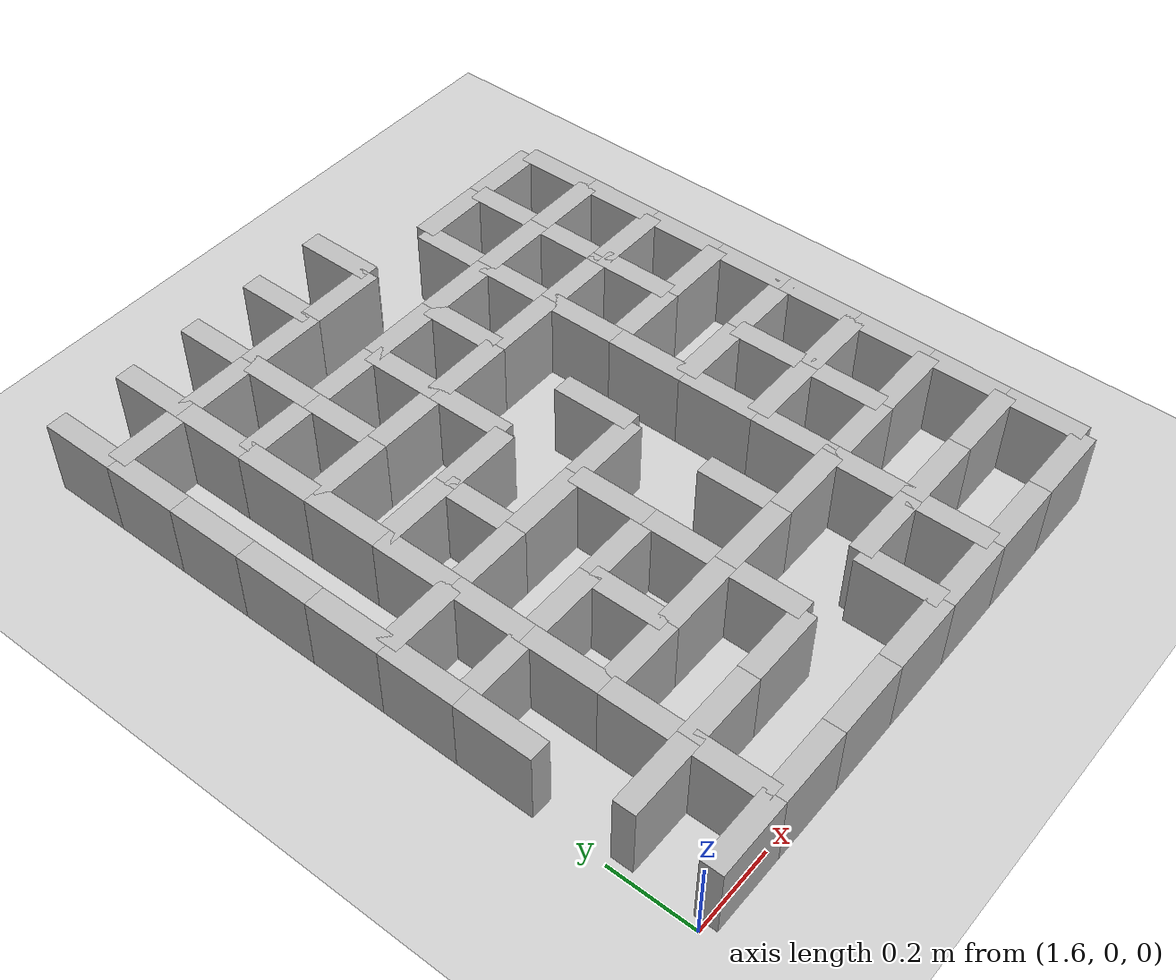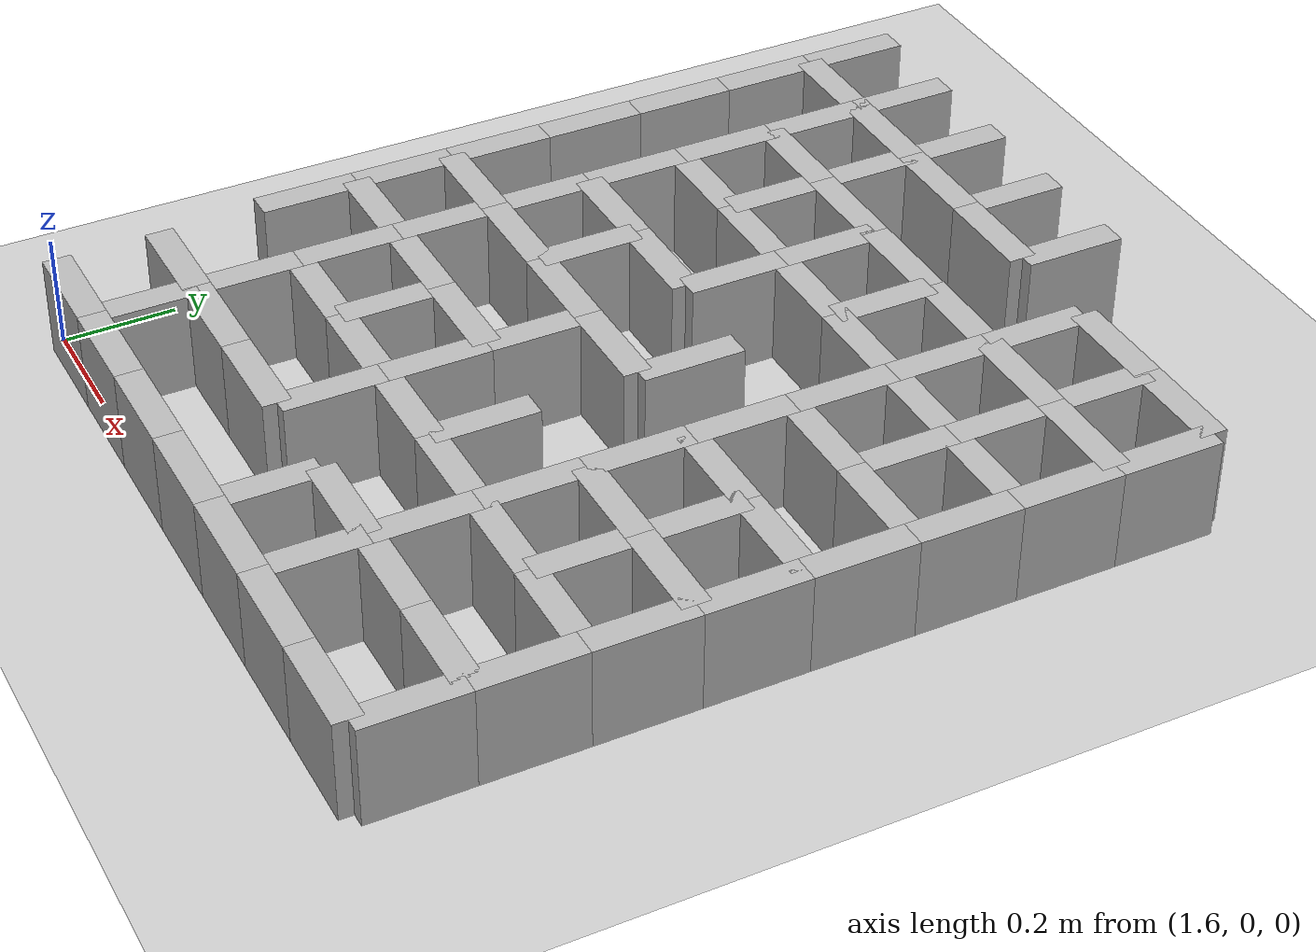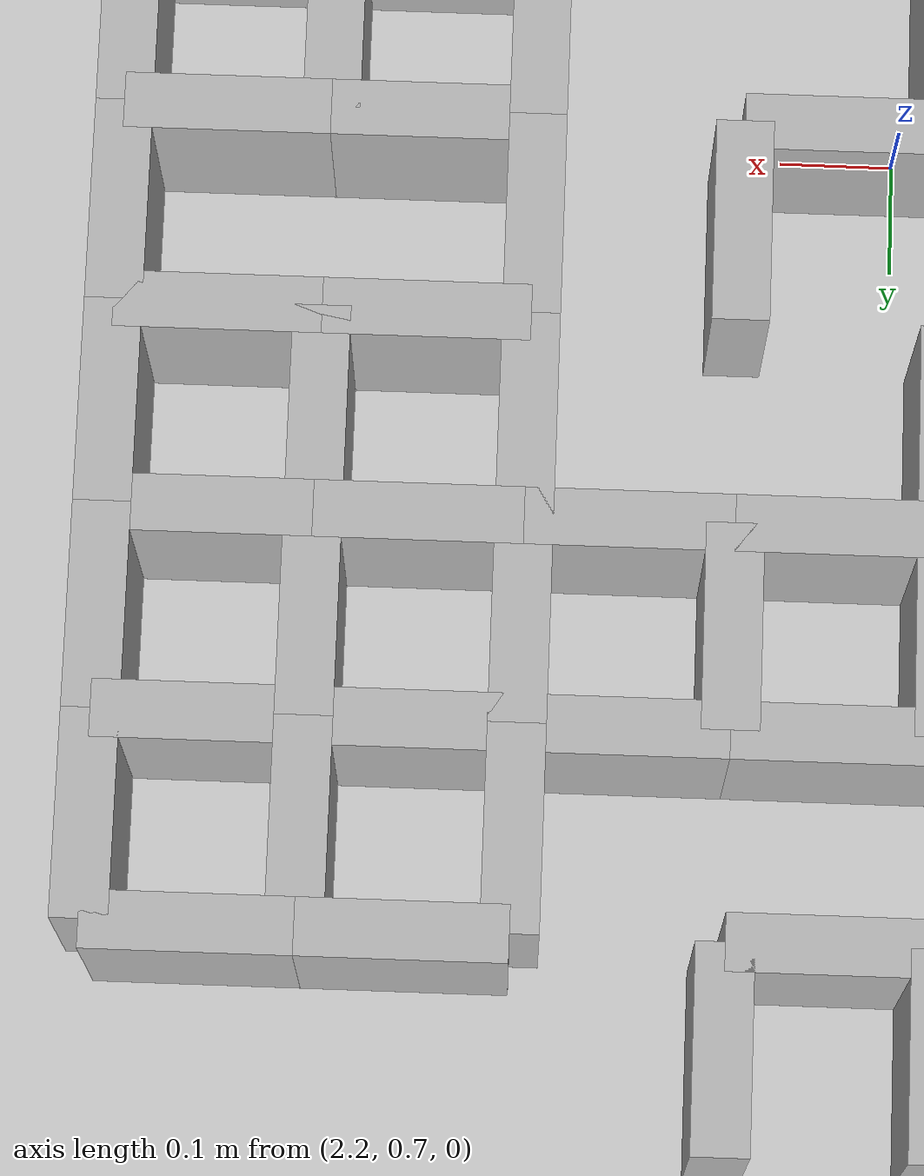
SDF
<sdf version="1.6">
 <world name="default">
  <model name="ground_plane">
   <static>1</static>
   <link name="link">
    <collision name="collision">
     <geometry><plane><normal>0 0 1</normal><size>100 100</size></plane></geometry>
     <surface><friction><ode><mu>100</mu><mu2>50</mu2></ode></friction></surface>
    </collision>
    <visual name="visual">
     <cast_shadows>0</cast_shadows>
     <geometry><plane><normal>0 0 1</normal><size>100 100</size></plane></geometry>
     <material>
      <script><uri>file://media/materials/scripts/gazebo.material</uri><name>Gazebo/Grey</name></script>
     </material>
    </visual>
   </link>
  </model>
  <model name="labyrinth_wall19">
   <pose>1.710000 0.000000 0.09 0 0 0.000000</pose>
   <link name="link">
    <inertial><mass>3.0</mass></inertial>
    <collision name="collision"><geometry><box><size>0.180 0.050 0.180</size></box></geometry></collision>
    <visual name="visual"><geometry><box><size>0.180 0.050 0.180</size></box></geometry></visual>
   </link>
   <static>true</static>
  </model>
  <model name="labyrinth_wall20">
   <pose>1.800000 0.090000 0.09 0 0 1.570796</pose>
   <link name="link">
    <inertial><mass>3.0</mass></inertial>
    <collision name="collision"><geometry><box><size>0.180 0.050 0.180</size></box></geometry></collision>
    <visual name="visual"><geometry><box><size>0.180 0.050 0.180</size></box></geometry></visual>
   </link>
   <static>true</static>
  </model>
  <model name="labyrinth_wall21">
   <pose>1.890000 0.000000 0.09 0 0 0.000000</pose>
   <link name="link">
    <inertial><mass>3.0</mass></inertial>
    <collision name="collision"><geometry><box><size>0.180 0.050 0.180</size></box></geometry></collision>
    <visual name="visual"><geometry><box><size>0.180 0.050 0.180</size></box></geometry></visual>
   </link>
   <static>true</static>
  </model>
  <model name="labyrinth_wall23">
   <pose>2.070000 0.000000 0.09 0 0 0.000000</pose>
   <link name="link">
    <inertial><mass>3.0</mass></inertial>
    <collision name="collision"><geometry><box><size>0.180 0.050 0.180</size></box></geometry></collision>
    <visual name="visual"><geometry><box><size>0.180 0.050 0.180</size></box></geometry></visual>
   </link>
   <static>true</static>
  </model>
  <model name="labyrinth_wall25">
   <pose>2.250000 0.000000 0.09 0 0 0.000000</pose>
   <link name="link">
    <inertial><mass>3.0</mass></inertial>
    <collision name="collision"><geometry><box><size>0.180 0.050 0.180</size></box></geometry></collision>
    <visual name="visual"><geometry><box><size>0.180 0.050 0.180</size></box></geometry></visual>
   </link>
   <static>true</static>
  </model>
  <model name="labyrinth_wall26">
   <pose>2.340000 0.090000 0.09 0 0 1.570796</pose>
   <link name="link">
    <inertial><mass>3.0</mass></inertial>
    <collision name="collision"><geometry><box><size>0.180 0.050 0.180</size></box></geometry></collision>
    <visual name="visual"><geometry><box><size>0.180 0.050 0.180</size></box></geometry></visual>
   </link>
   <static>true</static>
  </model>
  <model name="labyrinth_wall27">
   <pose>2.430000 0.000000 0.09 0 0 0.000000</pose>
   <link name="link">
    <inertial><mass>3.0</mass></inertial>
    <collision name="collision"><geometry><box><size>0.180 0.050 0.180</size></box></geometry></collision>
    <visual name="visual"><geometry><box><size>0.180 0.050 0.180</size></box></geometry></visual>
   </link>
   <static>true</static>
  </model>
  <model name="labyrinth_wall28">
   <pose>2.520000 0.090000 0.09 0 0 1.570796</pose>
   <link name="link">
    <inertial><mass>3.0</mass></inertial>
    <collision name="collision"><geometry><box><size>0.180 0.050 0.180</size></box></geometry></collision>
    <visual name="visual"><geometry><box><size>0.180 0.050 0.180</size></box></geometry></visual>
   </link>
   <static>true</static>
  </model>
  <model name="labyrinth_wall29">
   <pose>2.610000 0.000000 0.09 0 0 0.000000</pose>
   <link name="link">
    <inertial><mass>3.0</mass></inertial>
    <collision name="collision"><geometry><box><size>0.180 0.050 0.180</size></box></geometry></collision>
    <visual name="visual"><geometry><box><size>0.180 0.050 0.180</size></box></geometry></visual>
   </link>
   <static>true</static>
  </model>
  <model name="labyrinth_wall31">
   <pose>2.790000 0.000000 0.09 0 0 0.000000</pose>
   <link name="link">
    <inertial><mass>3.0</mass></inertial>
    <collision name="collision"><geometry><box><size>0.180 0.050 0.180</size></box></geometry></collision>
    <visual name="visual"><geometry><box><size>0.180 0.050 0.180</size></box></geometry></visual>
   </link>
   <static>true</static>
  </model>
  <model name="labyrinth_wall32">
   <pose>2.880000 0.090000 0.09 0 0 1.570796</pose>
   <link name="link">
    <inertial><mass>3.0</mass></inertial>
    <collision name="collision"><geometry><box><size>0.180 0.050 0.180</size></box></geometry></collision>
    <visual name="visual"><geometry><box><size>0.180 0.050 0.180</size></box></geometry></visual>
   </link>
   <static>true</static>
  </model>
  <model name="labyrinth_wall52">
   <pose>1.710000 0.180000 0.09 0 0 0.000000</pose>
   <link name="link">
    <inertial><mass>3.0</mass></inertial>
    <collision name="collision"><geometry><box><size>0.180 0.050 0.180</size></box></geometry></collision>
    <visual name="visual"><geometry><box><size>0.180 0.050 0.180</size></box></geometry></visual>
   </link>
   <static>true</static>
  </model>
  <model name="labyrinth_wall53">
   <pose>1.800000 0.270000 0.09 0 0 1.570796</pose>
   <link name="link">
    <inertial><mass>3.0</mass></inertial>
    <collision name="collision"><geometry><box><size>0.180 0.050 0.180</size></box></geometry></collision>
    <visual name="visual"><geometry><box><size>0.180 0.050 0.180</size></box></geometry></visual>
   </link>
   <static>true</static>
  </model>
  <model name="labyrinth_wall54">
   <pose>1.890000 0.180000 0.09 0 0 0.000000</pose>
   <link name="link">
    <inertial><mass>3.0</mass></inertial>
    <collision name="collision"><geometry><box><size>0.180 0.050 0.180</size></box></geometry></collision>
    <visual name="visual"><geometry><box><size>0.180 0.050 0.180</size></box></geometry></visual>
   </link>
   <static>true</static>
  </model>
  <model name="labyrinth_wall56">
   <pose>2.070000 0.180000 0.09 0 0 0.000000</pose>
   <link name="link">
    <inertial><mass>3.0</mass></inertial>
    <collision name="collision"><geometry><box><size>0.180 0.050 0.180</size></box></geometry></collision>
    <visual name="visual"><geometry><box><size>0.180 0.050 0.180</size></box></geometry></visual>
   </link>
   <static>true</static>
  </model>
  <model name="labyrinth_wall57">
   <pose>2.160000 0.270000 0.09 0 0 1.570796</pose>
   <link name="link">
    <inertial><mass>3.0</mass></inertial>
    <collision name="collision"><geometry><box><size>0.180 0.050 0.180</size></box></geometry></collision>
    <visual name="visual"><geometry><box><size>0.180 0.050 0.180</size></box></geometry></visual>
   </link>
   <static>true</static>
  </model>
  <model name="labyrinth_wall60">
   <pose>2.430000 0.180000 0.09 0 0 0.000000</pose>
   <link name="link">
    <inertial><mass>3.0</mass></inertial>
    <collision name="collision"><geometry><box><size>0.180 0.050 0.180</size></box></geometry></collision>
    <visual name="visual"><geometry><box><size>0.180 0.050 0.180</size></box></geometry></visual>
   </link>
   <static>true</static>
  </model>
  <model name="labyrinth_wall61">
   <pose>2.520000 0.270000 0.09 0 0 1.570796</pose>
   <link name="link">
    <inertial><mass>3.0</mass></inertial>
    <collision name="collision"><geometry><box><size>0.180 0.050 0.180</size></box></geometry></collision>
    <visual name="visual"><geometry><box><size>0.180 0.050 0.180</size></box></geometry></visual>
   </link>
   <static>true</static>
  </model>
  <model name="labyrinth_wall62">
   <pose>2.610000 0.180000 0.09 0 0 0.000000</pose>
   <link name="link">
    <inertial><mass>3.0</mass></inertial>
    <collision name="collision"><geometry><box><size>0.180 0.050 0.180</size></box></geometry></collision>
    <visual name="visual"><geometry><box><size>0.180 0.050 0.180</size></box></geometry></visual>
   </link>
   <static>true</static>
  </model>
  <model name="labyrinth_wall64">
   <pose>2.790000 0.180000 0.09 0 0 0.000000</pose>
   <link name="link">
    <inertial><mass>3.0</mass></inertial>
    <collision name="collision"><geometry><box><size>0.180 0.050 0.180</size></box></geometry></collision>
    <visual name="visual"><geometry><box><size>0.180 0.050 0.180</size></box></geometry></visual>
   </link>
   <static>true</static>
  </model>
  <model name="labyrinth_wall65">
   <pose>2.880000 0.270000 0.09 0 0 1.570796</pose>
   <link name="link">
    <inertial><mass>3.0</mass></inertial>
    <collision name="collision"><geometry><box><size>0.180 0.050 0.180</size></box></geometry></collision>
    <visual name="visual"><geometry><box><size>0.180 0.050 0.180</size></box></geometry></visual>
   </link>
   <static>true</static>
  </model>
  <model name="labyrinth_wall84">
   <pose>1.620000 0.450000 0.09 0 0 1.570796</pose>
   <link name="link">
    <inertial><mass>3.0</mass></inertial>
    <collision name="collision"><geometry><box><size>0.180 0.050 0.180</size></box></geometry></collision>
    <visual name="visual"><geometry><box><size>0.180 0.050 0.180</size></box></geometry></visual>
   </link>
   <static>true</static>
  </model>
  <model name="labyrinth_wall86">
   <pose>1.800000 0.450000 0.09 0 0 1.570796</pose>
   <link name="link">
    <inertial><mass>3.0</mass></inertial>
    <collision name="collision"><geometry><box><size>0.180 0.050 0.180</size></box></geometry></collision>
    <visual name="visual"><geometry><box><size>0.180 0.050 0.180</size></box></geometry></visual>
   </link>
   <static>true</static>
  </model>
  <model name="labyrinth_wall87">
   <pose>1.890000 0.360000 0.09 0 0 0.000000</pose>
   <link name="link">
    <inertial><mass>3.0</mass></inertial>
    <collision name="collision"><geometry><box><size>0.180 0.050 0.180</size></box></geometry></collision>
    <visual name="visual"><geometry><box><size>0.180 0.050 0.180</size></box></geometry></visual>
   </link>
   <static>true</static>
  </model>
  <model name="labyrinth_wall88">
   <pose>1.980000 0.450000 0.09 0 0 1.570796</pose>
   <link name="link">
    <inertial><mass>3.0</mass></inertial>
    <collision name="collision"><geometry><box><size>0.180 0.050 0.180</size></box></geometry></collision>
    <visual name="visual"><geometry><box><size>0.180 0.050 0.180</size></box></geometry></visual>
   </link>
   <static>true</static>
  </model>
  <model name="labyrinth_wall89">
   <pose>2.070000 0.360000 0.09 0 0 0.000000</pose>
   <link name="link">
    <inertial><mass>3.0</mass></inertial>
    <collision name="collision"><geometry><box><size>0.180 0.050 0.180</size></box></geometry></collision>
    <visual name="visual"><geometry><box><size>0.180 0.050 0.180</size></box></geometry></visual>
   </link>
   <static>true</static>
  </model>
  <model name="labyrinth_wall90">
   <pose>2.160000 0.450000 0.09 0 0 1.570796</pose>
   <link name="link">
    <inertial><mass>3.0</mass></inertial>
    <collision name="collision"><geometry><box><size>0.180 0.050 0.180</size></box></geometry></collision>
    <visual name="visual"><geometry><box><size>0.180 0.050 0.180</size></box></geometry></visual>
   </link>
   <static>true</static>
  </model>
  <model name="labyrinth_wall91">
   <pose>2.250000 0.360000 0.09 0 0 0.000000</pose>
   <link name="link">
    <inertial><mass>3.0</mass></inertial>
    <collision name="collision"><geometry><box><size>0.180 0.050 0.180</size></box></geometry></collision>
    <visual name="visual"><geometry><box><size>0.180 0.050 0.180</size></box></geometry></visual>
   </link>
   <static>true</static>
  </model>
  <model name="labyrinth_wall92">
   <pose>2.340000 0.450000 0.09 0 0 1.570796</pose>
   <link name="link">
    <inertial><mass>3.0</mass></inertial>
    <collision name="collision"><geometry><box><size>0.180 0.050 0.180</size></box></geometry></collision>
    <visual name="visual"><geometry><box><size>0.180 0.050 0.180</size></box></geometry></visual>
   </link>
   <static>true</static>
  </model>
  <model name="labyrinth_wall93">
   <pose>2.430000 0.360000 0.09 0 0 0.000000</pose>
   <link name="link">
    <inertial><mass>3.0</mass></inertial>
    <collision name="collision"><geometry><box><size>0.180 0.050 0.180</size></box></geometry></collision>
    <visual name="visual"><geometry><box><size>0.180 0.050 0.180</size></box></geometry></visual>
   </link>
   <static>true</static>
  </model>
  <model name="labyrinth_wall94">
   <pose>2.520000 0.450000 0.09 0 0 1.570796</pose>
   <link name="link">
    <inertial><mass>3.0</mass></inertial>
    <collision name="collision"><geometry><box><size>0.180 0.050 0.180</size></box></geometry></collision>
    <visual name="visual"><geometry><box><size>0.180 0.050 0.180</size></box></geometry></visual>
   </link>
   <static>true</static>
  </model>
  <model name="labyrinth_wall95">
   <pose>2.610000 0.360000 0.09 0 0 0.000000</pose>
   <link name="link">
    <inertial><mass>3.0</mass></inertial>
    <collision name="collision"><geometry><box><size>0.180 0.050 0.180</size></box></geometry></collision>
    <visual name="visual"><geometry><box><size>0.180 0.050 0.180</size></box></geometry></visual>
   </link>
   <static>true</static>
  </model>
  <model name="labyrinth_wall96">
   <pose>2.700000 0.450000 0.09 0 0 1.570796</pose>
   <link name="link">
    <inertial><mass>3.0</mass></inertial>
    <collision name="collision"><geometry><box><size>0.180 0.050 0.180</size></box></geometry></collision>
    <visual name="visual"><geometry><box><size>0.180 0.050 0.180</size></box></geometry></visual>
   </link>
   <static>true</static>
  </model>
  <model name="labyrinth_wall97">
   <pose>2.790000 0.360000 0.09 0 0 0.000000</pose>
   <link name="link">
    <inertial><mass>3.0</mass></inertial>
    <collision name="collision"><geometry><box><size>0.180 0.050 0.180</size></box></geometry></collision>
    <visual name="visual"><geometry><box><size>0.180 0.050 0.180</size></box></geometry></visual>
   </link>
   <static>true</static>
  </model>
  <model name="labyrinth_wall98">
   <pose>2.880000 0.450000 0.09 0 0 1.570796</pose>
   <link name="link">
    <inertial><mass>3.0</mass></inertial>
    <collision name="collision"><geometry><box><size>0.180 0.050 0.180</size></box></geometry></collision>
    <visual name="visual"><geometry><box><size>0.180 0.050 0.180</size></box></geometry></visual>
   </link>
   <static>true</static>
  </model>
  <model name="labyrinth_wall117">
   <pose>1.620000 0.630000 0.09 0 0 1.570796</pose>
   <link name="link">
    <inertial><mass>3.0</mass></inertial>
    <collision name="collision"><geometry><box><size>0.180 0.050 0.180</size></box></geometry></collision>
    <visual name="visual"><geometry><box><size>0.180 0.050 0.180</size></box></geometry></visual>
   </link>
   <static>true</static>
  </model>
  <model name="labyrinth_wall118">
   <pose>1.710000 0.540000 0.09 0 0 0.000000</pose>
   <link name="link">
    <inertial><mass>3.0</mass></inertial>
    <collision name="collision"><geometry><box><size>0.180 0.050 0.180</size></box></geometry></collision>
    <visual name="visual"><geometry><box><size>0.180 0.050 0.180</size></box></geometry></visual>
   </link>
   <static>true</static>
  </model>
  <model name="labyrinth_wall119">
   <pose>1.800000 0.630000 0.09 0 0 1.570796</pose>
   <link name="link">
    <inertial><mass>3.0</mass></inertial>
    <collision name="collision"><geometry><box><size>0.180 0.050 0.180</size></box></geometry></collision>
    <visual name="visual"><geometry><box><size>0.180 0.050 0.180</size></box></geometry></visual>
   </link>
   <static>true</static>
  </model>
  <model name="labyrinth_wall120">
   <pose>1.890000 0.540000 0.09 0 0 0.000000</pose>
   <link name="link">
    <inertial><mass>3.0</mass></inertial>
    <collision name="collision"><geometry><box><size>0.180 0.050 0.180</size></box></geometry></collision>
    <visual name="visual"><geometry><box><size>0.180 0.050 0.180</size></box></geometry></visual>
   </link>
   <static>true</static>
  </model>
  <model name="labyrinth_wall122">
   <pose>2.070000 0.540000 0.09 0 0 0.000000</pose>
   <link name="link">
    <inertial><mass>3.0</mass></inertial>
    <collision name="collision"><geometry><box><size>0.180 0.050 0.180</size></box></geometry></collision>
    <visual name="visual"><geometry><box><size>0.180 0.050 0.180</size></box></geometry></visual>
   </link>
   <static>true</static>
  </model>
  <model name="labyrinth_wall123">
   <pose>2.160000 0.630000 0.09 0 0 1.570796</pose>
   <link name="link">
    <inertial><mass>3.0</mass></inertial>
    <collision name="collision"><geometry><box><size>0.180 0.050 0.180</size></box></geometry></collision>
    <visual name="visual"><geometry><box><size>0.180 0.050 0.180</size></box></geometry></visual>
   </link>
   <static>true</static>
  </model>
  <model name="labyrinth_wall127">
   <pose>2.520000 0.630000 0.09 0 0 1.570796</pose>
   <link name="link">
    <inertial><mass>3.0</mass></inertial>
    <collision name="collision"><geometry><box><size>0.180 0.050 0.180</size></box></geometry></collision>
    <visual name="visual"><geometry><box><size>0.180 0.050 0.180</size></box></geometry></visual>
   </link>
   <static>true</static>
  </model>
  <model name="labyrinth_wall128">
   <pose>2.610000 0.540000 0.09 0 0 0.000000</pose>
   <link name="link">
    <inertial><mass>3.0</mass></inertial>
    <collision name="collision"><geometry><box><size>0.180 0.050 0.180</size></box></geometry></collision>
    <visual name="visual"><geometry><box><size>0.180 0.050 0.180</size></box></geometry></visual>
   </link>
   <static>true</static>
  </model>
  <model name="labyrinth_wall129">
   <pose>2.700000 0.630000 0.09 0 0 1.570796</pose>
   <link name="link">
    <inertial><mass>3.0</mass></inertial>
    <collision name="collision"><geometry><box><size>0.180 0.050 0.180</size></box></geometry></collision>
    <visual name="visual"><geometry><box><size>0.180 0.050 0.180</size></box></geometry></visual>
   </link>
   <static>true</static>
  </model>
  <model name="labyrinth_wall130">
   <pose>2.790000 0.540000 0.09 0 0 0.000000</pose>
   <link name="link">
    <inertial><mass>3.0</mass></inertial>
    <collision name="collision"><geometry><box><size>0.180 0.050 0.180</size></box></geometry></collision>
    <visual name="visual"><geometry><box><size>0.180 0.050 0.180</size></box></geometry></visual>
   </link>
   <static>true</static>
  </model>
  <model name="labyrinth_wall131">
   <pose>2.880000 0.630000 0.09 0 0 1.570796</pose>
   <link name="link">
    <inertial><mass>3.0</mass></inertial>
    <collision name="collision"><geometry><box><size>0.180 0.050 0.180</size></box></geometry></collision>
    <visual name="visual"><geometry><box><size>0.180 0.050 0.180</size></box></geometry></visual>
   </link>
   <static>true</static>
  </model>
  <model name="labyrinth_wall150">
   <pose>1.620000 0.810000 0.09 0 0 1.570796</pose>
   <link name="link">
    <inertial><mass>3.0</mass></inertial>
    <collision name="collision"><geometry><box><size>0.180 0.050 0.180</size></box></geometry></collision>
    <visual name="visual"><geometry><box><size>0.180 0.050 0.180</size></box></geometry></visual>
   </link>
   <static>true</static>
  </model>
  <model name="labyrinth_wall151">
   <pose>1.710000 0.720000 0.09 0 0 0.000000</pose>
   <link name="link">
    <inertial><mass>3.0</mass></inertial>
    <collision name="collision"><geometry><box><size>0.180 0.050 0.180</size></box></geometry></collision>
    <visual name="visual"><geometry><box><size>0.180 0.050 0.180</size></box></geometry></visual>
   </link>
   <static>true</static>
  </model>
  <model name="labyrinth_wall152">
   <pose>1.800000 0.810000 0.09 0 0 1.570796</pose>
   <link name="link">
    <inertial><mass>3.0</mass></inertial>
    <collision name="collision"><geometry><box><size>0.180 0.050 0.180</size></box></geometry></collision>
    <visual name="visual"><geometry><box><size>0.180 0.050 0.180</size></box></geometry></visual>
   </link>
   <static>true</static>
  </model>
  <model name="labyrinth_wall153">
   <pose>1.890000 0.720000 0.09 0 0 0.000000</pose>
   <link name="link">
    <inertial><mass>3.0</mass></inertial>
    <collision name="collision"><geometry><box><size>0.180 0.050 0.180</size></box></geometry></collision>
    <visual name="visual"><geometry><box><size>0.180 0.050 0.180</size></box></geometry></visual>
   </link>
   <static>true</static>
  </model>
  <model name="labyrinth_wall154">
   <pose>1.980000 0.810000 0.09 0 0 1.570796</pose>
   <link name="link">
    <inertial><mass>3.0</mass></inertial>
    <collision name="collision"><geometry><box><size>0.180 0.050 0.180</size></box></geometry></collision>
    <visual name="visual"><geometry><box><size>0.180 0.050 0.180</size></box></geometry></visual>
   </link>
   <static>true</static>
  </model>
  <model name="labyrinth_wall155">
   <pose>2.070000 0.720000 0.09 0 0 0.000000</pose>
   <link name="link">
    <inertial><mass>3.0</mass></inertial>
    <collision name="collision"><geometry><box><size>0.180 0.050 0.180</size></box></geometry></collision>
    <visual name="visual"><geometry><box><size>0.180 0.050 0.180</size></box></geometry></visual>
   </link>
   <static>true</static>
  </model>
  <model name="labyrinth_wall157">
   <pose>2.250000 0.720000 0.09 0 0 0.000000</pose>
   <link name="link">
    <inertial><mass>3.0</mass></inertial>
    <collision name="collision"><geometry><box><size>0.180 0.050 0.180</size></box></geometry></collision>
    <visual name="visual"><geometry><box><size>0.180 0.050 0.180</size></box></geometry></visual>
   </link>
   <static>true</static>
  </model>
  <model name="labyrinth_wall158">
   <pose>2.340000 0.810000 0.09 0 0 1.570796</pose>
   <link name="link">
    <inertial><mass>3.0</mass></inertial>
    <collision name="collision"><geometry><box><size>0.180 0.050 0.180</size></box></geometry></collision>
    <visual name="visual"><geometry><box><size>0.180 0.050 0.180</size></box></geometry></visual>
   </link>
   <static>true</static>
  </model>
  <model name="labyrinth_wall160">
   <pose>2.520000 0.810000 0.09 0 0 1.570796</pose>
   <link name="link">
    <inertial><mass>3.0</mass></inertial>
    <collision name="collision"><geometry><box><size>0.180 0.050 0.180</size></box></geometry></collision>
    <visual name="visual"><geometry><box><size>0.180 0.050 0.180</size></box></geometry></visual>
   </link>
   <static>true</static>
  </model>
  <model name="labyrinth_wall161">
   <pose>2.610000 0.720000 0.09 0 0 0.000000</pose>
   <link name="link">
    <inertial><mass>3.0</mass></inertial>
    <collision name="collision"><geometry><box><size>0.180 0.050 0.180</size></box></geometry></collision>
    <visual name="visual"><geometry><box><size>0.180 0.050 0.180</size></box></geometry></visual>
   </link>
   <static>true</static>
  </model>
  <model name="labyrinth_wall163">
   <pose>2.790000 0.720000 0.09 0 0 0.000000</pose>
   <link name="link">
    <inertial><mass>3.0</mass></inertial>
    <collision name="collision"><geometry><box><size>0.180 0.050 0.180</size></box></geometry></collision>
    <visual name="visual"><geometry><box><size>0.180 0.050 0.180</size></box></geometry></visual>
   </link>
   <static>true</static>
  </model>
  <model name="labyrinth_wall164">
   <pose>2.880000 0.810000 0.09 0 0 1.570796</pose>
   <link name="link">
    <inertial><mass>3.0</mass></inertial>
    <collision name="collision"><geometry><box><size>0.180 0.050 0.180</size></box></geometry></collision>
    <visual name="visual"><geometry><box><size>0.180 0.050 0.180</size></box></geometry></visual>
   </link>
   <static>true</static>
  </model>
  <model name="labyrinth_wall183">
   <pose>1.620000 0.990000 0.09 0 0 1.570796</pose>
   <link name="link">
    <inertial><mass>3.0</mass></inertial>
    <collision name="collision"><geometry><box><size>0.180 0.050 0.180</size></box></geometry></collision>
    <visual name="visual"><geometry><box><size>0.180 0.050 0.180</size></box></geometry></visual>
   </link>
   <static>true</static>
  </model>
  <model name="labyrinth_wall185">
   <pose>1.800000 0.990000 0.09 0 0 1.570796</pose>
   <link name="link">
    <inertial><mass>3.0</mass></inertial>
    <collision name="collision"><geometry><box><size>0.180 0.050 0.180</size></box></geometry></collision>
    <visual name="visual"><geometry><box><size>0.180 0.050 0.180</size></box></geometry></visual>
   </link>
   <static>true</static>
  </model>
  <model name="labyrinth_wall186">
   <pose>1.890000 0.900000 0.09 0 0 0.000000</pose>
   <link name="link">
    <inertial><mass>3.0</mass></inertial>
    <collision name="collision"><geometry><box><size>0.180 0.050 0.180</size></box></geometry></collision>
    <visual name="visual"><geometry><box><size>0.180 0.050 0.180</size></box></geometry></visual>
   </link>
   <static>true</static>
  </model>
  <model name="labyrinth_wall188">
   <pose>2.070000 0.900000 0.09 0 0 0.000000</pose>
   <link name="link">
    <inertial><mass>3.0</mass></inertial>
    <collision name="collision"><geometry><box><size>0.180 0.050 0.180</size></box></geometry></collision>
    <visual name="visual"><geometry><box><size>0.180 0.050 0.180</size></box></geometry></visual>
   </link>
   <static>true</static>
  </model>
  <model name="labyrinth_wall189">
   <pose>2.160000 0.990000 0.09 0 0 1.570796</pose>
   <link name="link">
    <inertial><mass>3.0</mass></inertial>
    <collision name="collision"><geometry><box><size>0.180 0.050 0.180</size></box></geometry></collision>
    <visual name="visual"><geometry><box><size>0.180 0.050 0.180</size></box></geometry></visual>
   </link>
   <static>true</static>
  </model>
  <model name="labyrinth_wall193">
   <pose>2.520000 0.990000 0.09 0 0 1.570796</pose>
   <link name="link">
    <inertial><mass>3.0</mass></inertial>
    <collision name="collision"><geometry><box><size>0.180 0.050 0.180</size></box></geometry></collision>
    <visual name="visual"><geometry><box><size>0.180 0.050 0.180</size></box></geometry></visual>
   </link>
   <static>true</static>
  </model>
  <model name="labyrinth_wall194">
   <pose>2.610000 0.900000 0.09 0 0 0.000000</pose>
   <link name="link">
    <inertial><mass>3.0</mass></inertial>
    <collision name="collision"><geometry><box><size>0.180 0.050 0.180</size></box></geometry></collision>
    <visual name="visual"><geometry><box><size>0.180 0.050 0.180</size></box></geometry></visual>
   </link>
   <static>true</static>
  </model>
  <model name="labyrinth_wall195">
   <pose>2.700000 0.990000 0.09 0 0 1.570796</pose>
   <link name="link">
    <inertial><mass>3.0</mass></inertial>
    <collision name="collision"><geometry><box><size>0.180 0.050 0.180</size></box></geometry></collision>
    <visual name="visual"><geometry><box><size>0.180 0.050 0.180</size></box></geometry></visual>
   </link>
   <static>true</static>
  </model>
  <model name="labyrinth_wall196">
   <pose>2.790000 0.900000 0.09 0 0 0.000000</pose>
   <link name="link">
    <inertial><mass>3.0</mass></inertial>
    <collision name="collision"><geometry><box><size>0.180 0.050 0.180</size></box></geometry></collision>
    <visual name="visual"><geometry><box><size>0.180 0.050 0.180</size></box></geometry></visual>
   </link>
   <static>true</static>
  </model>
  <model name="labyrinth_wall197">
   <pose>2.880000 0.990000 0.09 0 0 1.570796</pose>
   <link name="link">
    <inertial><mass>3.0</mass></inertial>
    <collision name="collision"><geometry><box><size>0.180 0.050 0.180</size></box></geometry></collision>
    <visual name="visual"><geometry><box><size>0.180 0.050 0.180</size></box></geometry></visual>
   </link>
   <static>true</static>
  </model>
  <model name="labyrinth_wall216">
   <pose>1.620000 1.170000 0.09 0 0 1.570796</pose>
   <link name="link">
    <inertial><mass>3.0</mass></inertial>
    <collision name="collision"><geometry><box><size>0.180 0.050 0.180</size></box></geometry></collision>
    <visual name="visual"><geometry><box><size>0.180 0.050 0.180</size></box></geometry></visual>
   </link>
   <static>true</static>
  </model>
  <model name="labyrinth_wall218">
   <pose>1.800000 1.170000 0.09 0 0 1.570796</pose>
   <link name="link">
    <inertial><mass>3.0</mass></inertial>
    <collision name="collision"><geometry><box><size>0.180 0.050 0.180</size></box></geometry></collision>
    <visual name="visual"><geometry><box><size>0.180 0.050 0.180</size></box></geometry></visual>
   </link>
   <static>true</static>
  </model>
  <model name="labyrinth_wall219">
   <pose>1.890000 1.080000 0.09 0 0 0.000000</pose>
   <link name="link">
    <inertial><mass>3.0</mass></inertial>
    <collision name="collision"><geometry><box><size>0.180 0.050 0.180</size></box></geometry></collision>
    <visual name="visual"><geometry><box><size>0.180 0.050 0.180</size></box></geometry></visual>
   </link>
   <static>true</static>
  </model>
  <model name="labyrinth_wall220">
   <pose>1.980000 1.170000 0.09 0 0 1.570796</pose>
   <link name="link">
    <inertial><mass>3.0</mass></inertial>
    <collision name="collision"><geometry><box><size>0.180 0.050 0.180</size></box></geometry></collision>
    <visual name="visual"><geometry><box><size>0.180 0.050 0.180</size></box></geometry></visual>
   </link>
   <static>true</static>
  </model>
  <model name="labyrinth_wall221">
   <pose>2.070000 1.080000 0.09 0 0 0.000000</pose>
   <link name="link">
    <inertial><mass>3.0</mass></inertial>
    <collision name="collision"><geometry><box><size>0.180 0.050 0.180</size></box></geometry></collision>
    <visual name="visual"><geometry><box><size>0.180 0.050 0.180</size></box></geometry></visual>
   </link>
   <static>true</static>
  </model>
  <model name="labyrinth_wall222">
   <pose>2.160000 1.170000 0.09 0 0 1.570796</pose>
   <link name="link">
    <inertial><mass>3.0</mass></inertial>
    <collision name="collision"><geometry><box><size>0.180 0.050 0.180</size></box></geometry></collision>
    <visual name="visual"><geometry><box><size>0.180 0.050 0.180</size></box></geometry></visual>
   </link>
   <static>true</static>
  </model>
  <model name="labyrinth_wall223">
   <pose>2.250000 1.080000 0.09 0 0 0.000000</pose>
   <link name="link">
    <inertial><mass>3.0</mass></inertial>
    <collision name="collision"><geometry><box><size>0.180 0.050 0.180</size></box></geometry></collision>
    <visual name="visual"><geometry><box><size>0.180 0.050 0.180</size></box></geometry></visual>
   </link>
   <static>true</static>
  </model>
  <model name="labyrinth_wall224">
   <pose>2.340000 1.170000 0.09 0 0 1.570796</pose>
   <link name="link">
    <inertial><mass>3.0</mass></inertial>
    <collision name="collision"><geometry><box><size>0.180 0.050 0.180</size></box></geometry></collision>
    <visual name="visual"><geometry><box><size>0.180 0.050 0.180</size></box></geometry></visual>
   </link>
   <static>true</static>
  </model>
  <model name="labyrinth_wall225">
   <pose>2.430000 1.080000 0.09 0 0 0.000000</pose>
   <link name="link">
    <inertial><mass>3.0</mass></inertial>
    <collision name="collision"><geometry><box><size>0.180 0.050 0.180</size></box></geometry></collision>
    <visual name="visual"><geometry><box><size>0.180 0.050 0.180</size></box></geometry></visual>
   </link>
   <static>true</static>
  </model>
  <model name="labyrinth_wall226">
   <pose>2.520000 1.170000 0.09 0 0 1.570796</pose>
   <link name="link">
    <inertial><mass>3.0</mass></inertial>
    <collision name="collision"><geometry><box><size>0.180 0.050 0.180</size></box></geometry></collision>
    <visual name="visual"><geometry><box><size>0.180 0.050 0.180</size></box></geometry></visual>
   </link>
   <static>true</static>
  </model>
  <model name="labyrinth_wall227">
   <pose>2.610000 1.080000 0.09 0 0 0.000000</pose>
   <link name="link">
    <inertial><mass>3.0</mass></inertial>
    <collision name="collision"><geometry><box><size>0.180 0.050 0.180</size></box></geometry></collision>
    <visual name="visual"><geometry><box><size>0.180 0.050 0.180</size></box></geometry></visual>
   </link>
   <static>true</static>
  </model>
  <model name="labyrinth_wall228">
   <pose>2.700000 1.170000 0.09 0 0 1.570796</pose>
   <link name="link">
    <inertial><mass>3.0</mass></inertial>
    <collision name="collision"><geometry><box><size>0.180 0.050 0.180</size></box></geometry></collision>
    <visual name="visual"><geometry><box><size>0.180 0.050 0.180</size></box></geometry></visual>
   </link>
   <static>true</static>
  </model>
  <model name="labyrinth_wall229">
   <pose>2.790000 1.080000 0.09 0 0 0.000000</pose>
   <link name="link">
    <inertial><mass>3.0</mass></inertial>
    <collision name="collision"><geometry><box><size>0.180 0.050 0.180</size></box></geometry></collision>
    <visual name="visual"><geometry><box><size>0.180 0.050 0.180</size></box></geometry></visual>
   </link>
   <static>true</static>
  </model>
  <model name="labyrinth_wall230">
   <pose>2.880000 1.170000 0.09 0 0 1.570796</pose>
   <link name="link">
    <inertial><mass>3.0</mass></inertial>
    <collision name="collision"><geometry><box><size>0.180 0.050 0.180</size></box></geometry></collision>
    <visual name="visual"><geometry><box><size>0.180 0.050 0.180</size></box></geometry></visual>
   </link>
   <static>true</static>
  </model>
  <model name="labyrinth_wall249">
   <pose>1.620000 1.350000 0.09 0 0 1.570796</pose>
   <link name="link">
    <inertial><mass>3.0</mass></inertial>
    <collision name="collision"><geometry><box><size>0.180 0.050 0.180</size></box></geometry></collision>
    <visual name="visual"><geometry><box><size>0.180 0.050 0.180</size></box></geometry></visual>
   </link>
   <static>true</static>
  </model>
  <model name="labyrinth_wall251">
   <pose>1.800000 1.350000 0.09 0 0 1.570796</pose>
   <link name="link">
    <inertial><mass>3.0</mass></inertial>
    <collision name="collision"><geometry><box><size>0.180 0.050 0.180</size></box></geometry></collision>
    <visual name="visual"><geometry><box><size>0.180 0.050 0.180</size></box></geometry></visual>
   </link>
   <static>true</static>
  </model>
  <model name="labyrinth_wall252">
   <pose>1.890000 1.260000 0.09 0 0 0.000000</pose>
   <link name="link">
    <inertial><mass>3.0</mass></inertial>
    <collision name="collision"><geometry><box><size>0.180 0.050 0.180</size></box></geometry></collision>
    <visual name="visual"><geometry><box><size>0.180 0.050 0.180</size></box></geometry></visual>
   </link>
   <static>true</static>
  </model>
  <model name="labyrinth_wall253">
   <pose>1.980000 1.350000 0.09 0 0 1.570796</pose>
   <link name="link">
    <inertial><mass>3.0</mass></inertial>
    <collision name="collision"><geometry><box><size>0.180 0.050 0.180</size></box></geometry></collision>
    <visual name="visual"><geometry><box><size>0.180 0.050 0.180</size></box></geometry></visual>
   </link>
   <static>true</static>
  </model>
  <model name="labyrinth_wall254">
   <pose>2.070000 1.260000 0.09 0 0 0.000000</pose>
   <link name="link">
    <inertial><mass>3.0</mass></inertial>
    <collision name="collision"><geometry><box><size>0.180 0.050 0.180</size></box></geometry></collision>
    <visual name="visual"><geometry><box><size>0.180 0.050 0.180</size></box></geometry></visual>
   </link>
   <static>true</static>
  </model>
  <model name="labyrinth_wall256">
   <pose>2.250000 1.260000 0.09 0 0 0.000000</pose>
   <link name="link">
    <inertial><mass>3.0</mass></inertial>
    <collision name="collision"><geometry><box><size>0.180 0.050 0.180</size></box></geometry></collision>
    <visual name="visual"><geometry><box><size>0.180 0.050 0.180</size></box></geometry></visual>
   </link>
   <static>true</static>
  </model>
  <model name="labyrinth_wall258">
   <pose>2.430000 1.260000 0.09 0 0 0.000000</pose>
   <link name="link">
    <inertial><mass>3.0</mass></inertial>
    <collision name="collision"><geometry><box><size>0.180 0.050 0.180</size></box></geometry></collision>
    <visual name="visual"><geometry><box><size>0.180 0.050 0.180</size></box></geometry></visual>
   </link>
   <static>true</static>
  </model>
  <model name="labyrinth_wall259">
   <pose>2.520000 1.350000 0.09 0 0 1.570796</pose>
   <link name="link">
    <inertial><mass>3.0</mass></inertial>
    <collision name="collision"><geometry><box><size>0.180 0.050 0.180</size></box></geometry></collision>
    <visual name="visual"><geometry><box><size>0.180 0.050 0.180</size></box></geometry></visual>
   </link>
   <static>true</static>
  </model>
  <model name="labyrinth_wall260">
   <pose>2.610000 1.260000 0.09 0 0 0.000000</pose>
   <link name="link">
    <inertial><mass>3.0</mass></inertial>
    <collision name="collision"><geometry><box><size>0.180 0.050 0.180</size></box></geometry></collision>
    <visual name="visual"><geometry><box><size>0.180 0.050 0.180</size></box></geometry></visual>
   </link>
   <static>true</static>
  </model>
  <model name="labyrinth_wall261">
   <pose>2.700000 1.350000 0.09 0 0 1.570796</pose>
   <link name="link">
    <inertial><mass>3.0</mass></inertial>
    <collision name="collision"><geometry><box><size>0.180 0.050 0.180</size></box></geometry></collision>
    <visual name="visual"><geometry><box><size>0.180 0.050 0.180</size></box></geometry></visual>
   </link>
   <static>true</static>
  </model>
  <model name="labyrinth_wall262">
   <pose>2.790000 1.260000 0.09 0 0 0.000000</pose>
   <link name="link">
    <inertial><mass>3.0</mass></inertial>
    <collision name="collision"><geometry><box><size>0.180 0.050 0.180</size></box></geometry></collision>
    <visual name="visual"><geometry><box><size>0.180 0.050 0.180</size></box></geometry></visual>
   </link>
   <static>true</static>
  </model>
  <model name="labyrinth_wall263">
   <pose>2.880000 1.350000 0.09 0 0 1.570796</pose>
   <link name="link">
    <inertial><mass>3.0</mass></inertial>
    <collision name="collision"><geometry><box><size>0.180 0.050 0.180</size></box></geometry></collision>
    <visual name="visual"><geometry><box><size>0.180 0.050 0.180</size></box></geometry></visual>
   </link>
   <static>true</static>
  </model>
  <model name="labyrinth_wall282">
   <pose>1.620000 1.530000 0.09 0 0 1.570796</pose>
   <link name="link">
    <inertial><mass>3.0</mass></inertial>
    <collision name="collision"><geometry><box><size>0.180 0.050 0.180</size></box></geometry></collision>
    <visual name="visual"><geometry><box><size>0.180 0.050 0.180</size></box></geometry></visual>
   </link>
   <static>true</static>
  </model>
  <model name="labyrinth_wall283">
   <pose>1.710000 1.440000 0.09 0 0 0.000000</pose>
   <link name="link">
    <inertial><mass>3.0</mass></inertial>
    <collision name="collision"><geometry><box><size>0.180 0.050 0.180</size></box></geometry></collision>
    <visual name="visual"><geometry><box><size>0.180 0.050 0.180</size></box></geometry></visual>
   </link>
   <static>true</static>
  </model>
  <model name="labyrinth_wall284">
   <pose>1.800000 1.530000 0.09 0 0 1.570796</pose>
   <link name="link">
    <inertial><mass>3.0</mass></inertial>
    <collision name="collision"><geometry><box><size>0.180 0.050 0.180</size></box></geometry></collision>
    <visual name="visual"><geometry><box><size>0.180 0.050 0.180</size></box></geometry></visual>
   </link>
   <static>true</static>
  </model>
  <model name="labyrinth_wall285">
   <pose>1.890000 1.440000 0.09 0 0 0.000000</pose>
   <link name="link">
    <inertial><mass>3.0</mass></inertial>
    <collision name="collision"><geometry><box><size>0.180 0.050 0.180</size></box></geometry></collision>
    <visual name="visual"><geometry><box><size>0.180 0.050 0.180</size></box></geometry></visual>
   </link>
   <static>true</static>
  </model>
  <model name="labyrinth_wall286">
   <pose>1.980000 1.530000 0.09 0 0 1.570796</pose>
   <link name="link">
    <inertial><mass>3.0</mass></inertial>
    <collision name="collision"><geometry><box><size>0.180 0.050 0.180</size></box></geometry></collision>
    <visual name="visual"><geometry><box><size>0.180 0.050 0.180</size></box></geometry></visual>
   </link>
   <static>true</static>
  </model>
  <model name="labyrinth_wall287">
   <pose>2.070000 1.440000 0.09 0 0 0.000000</pose>
   <link name="link">
    <inertial><mass>3.0</mass></inertial>
    <collision name="collision"><geometry><box><size>0.180 0.050 0.180</size></box></geometry></collision>
    <visual name="visual"><geometry><box><size>0.180 0.050 0.180</size></box></geometry></visual>
   </link>
   <static>true</static>
  </model>
  <model name="labyrinth_wall288">
   <pose>2.160000 1.530000 0.09 0 0 1.570796</pose>
   <link name="link">
    <inertial><mass>3.0</mass></inertial>
    <collision name="collision"><geometry><box><size>0.180 0.050 0.180</size></box></geometry></collision>
    <visual name="visual"><geometry><box><size>0.180 0.050 0.180</size></box></geometry></visual>
   </link>
   <static>true</static>
  </model>
  <model name="labyrinth_wall289">
   <pose>2.250000 1.440000 0.09 0 0 0.000000</pose>
   <link name="link">
    <inertial><mass>3.0</mass></inertial>
    <collision name="collision"><geometry><box><size>0.180 0.050 0.180</size></box></geometry></collision>
    <visual name="visual"><geometry><box><size>0.180 0.050 0.180</size></box></geometry></visual>
   </link>
   <static>true</static>
  </model>
  <model name="labyrinth_wall290">
   <pose>2.340000 1.530000 0.09 0 0 1.570796</pose>
   <link name="link">
    <inertial><mass>3.0</mass></inertial>
    <collision name="collision"><geometry><box><size>0.180 0.050 0.180</size></box></geometry></collision>
    <visual name="visual"><geometry><box><size>0.180 0.050 0.180</size></box></geometry></visual>
   </link>
   <static>true</static>
  </model>
  <model name="labyrinth_wall293">
   <pose>2.610000 1.440000 0.09 0 0 0.000000</pose>
   <link name="link">
    <inertial><mass>3.0</mass></inertial>
    <collision name="collision"><geometry><box><size>0.180 0.050 0.180</size></box></geometry></collision>
    <visual name="visual"><geometry><box><size>0.180 0.050 0.180</size></box></geometry></visual>
   </link>
   <static>true</static>
  </model>
  <model name="labyrinth_wall295">
   <pose>2.790000 1.440000 0.09 0 0 0.000000</pose>
   <link name="link">
    <inertial><mass>3.0</mass></inertial>
    <collision name="collision"><geometry><box><size>0.180 0.050 0.180</size></box></geometry></collision>
    <visual name="visual"><geometry><box><size>0.180 0.050 0.180</size></box></geometry></visual>
   </link>
   <static>true</static>
  </model>
 </world>
</sdf>
